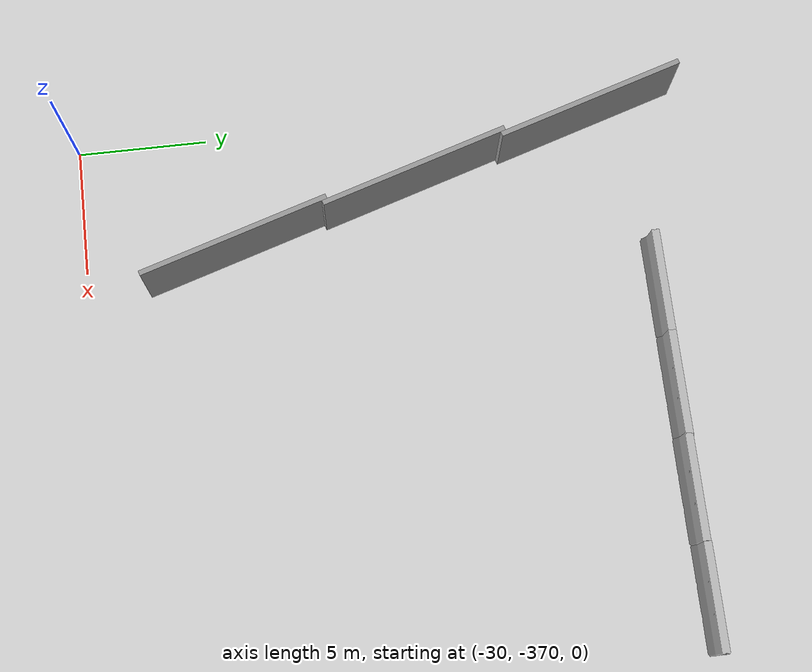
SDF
<sdf version="1.6">
 <world name="default">
  <model name="jersey_barrier_clone">
   <static>1</static>
   <link name="link">
    <visual name="visual">
     <geometry><mesh><uri>model://jersey_barrier/meshes/jersey_barrier.dae</uri></mesh></geometry>
    </visual>
    <collision name="upright">
     <pose>0 0 0.5715 0 -0 0</pose>
     <geometry><box><size>4.06542 0.3063 1.143</size></box></geometry>
    </collision>
    <collision name="base">
     <pose>0 0 0.032258 0 -0 0</pose>
     <geometry><box><size>4.06542 0.8107 0.064516</size></box></geometry>
    </collision>
    <collision name="base2">
     <pose>0 0 0.1 0 -0 0</pose>
     <geometry><box><size>4.06542 0.65 0.1</size></box></geometry>
    </collision>
    <collision name="base3">
     <pose>0 0 0.2 0 -0 0</pose>
     <geometry><box><size>4.06542 0.5 0.1</size></box></geometry>
    </collision>
    <collision name="left-angle">
     <pose>0 -0.224 0.2401 0.9 -0 0</pose>
     <geometry><box><size>4.06542 0.5 0.064516</size></box></geometry>
    </collision>
    <collision name="right-angle">
     <pose>0 0.224 0.2401 -0.9 0 0</pose>
     <geometry><box><size>4.06542 0.5 0.064516</size></box></geometry>
    </collision>
   </link>
   <pose>-22 -348 0 0 -0 0</pose>
  </model>
  <model name="jersey_barrier_clone_clone">
   <static>1</static>
   <link name="link">
    <visual name="visual">
     <geometry><mesh><uri>model://jersey_barrier/meshes/jersey_barrier.dae</uri></mesh></geometry>
    </visual>
    <collision name="upright">
     <pose>0 0 0.5715 0 -0 0</pose>
     <geometry><box><size>4.06542 0.3063 1.143</size></box></geometry>
    </collision>
    <collision name="base">
     <pose>0 0 0.032258 0 -0 0</pose>
     <geometry><box><size>4.06542 0.8107 0.064516</size></box></geometry>
    </collision>
    <collision name="base2">
     <pose>0 0 0.1 0 -0 0</pose>
     <geometry><box><size>4.06542 0.65 0.1</size></box></geometry>
    </collision>
    <collision name="base3">
     <pose>0 0 0.2 0 -0 0</pose>
     <geometry><box><size>4.06542 0.5 0.1</size></box></geometry>
    </collision>
    <collision name="left-angle">
     <pose>0 -0.224 0.2401 0.9 -0 0</pose>
     <geometry><box><size>4.06542 0.5 0.064516</size></box></geometry>
    </collision>
    <collision name="right-angle">
     <pose>0 0.224 0.2401 -0.9 0 0</pose>
     <geometry><box><size>4.06542 0.5 0.064516</size></box></geometry>
    </collision>
   </link>
   <pose>-18 -348 0 0 -0 0</pose>
  </model>
  <model name="jersey_barrier_clone_clone_clone">
   <static>1</static>
   <link name="link">
    <visual name="visual">
     <geometry><mesh><uri>model://jersey_barrier/meshes/jersey_barrier.dae</uri></mesh></geometry>
    </visual>
    <collision name="upright">
     <pose>0 0 0.5715 0 -0 0</pose>
     <geometry><box><size>4.06542 0.3063 1.143</size></box></geometry>
    </collision>
    <collision name="base">
     <pose>0 0 0.032258 0 -0 0</pose>
     <geometry><box><size>4.06542 0.8107 0.064516</size></box></geometry>
    </collision>
    <collision name="base2">
     <pose>0 0 0.1 0 -0 0</pose>
     <geometry><box><size>4.06542 0.65 0.1</size></box></geometry>
    </collision>
    <collision name="base3">
     <pose>0 0 0.2 0 -0 0</pose>
     <geometry><box><size>4.06542 0.5 0.1</size></box></geometry>
    </collision>
    <collision name="left-angle">
     <pose>0 -0.224 0.2401 0.9 -0 0</pose>
     <geometry><box><size>4.06542 0.5 0.064516</size></box></geometry>
    </collision>
    <collision name="right-angle">
     <pose>0 0.224 0.2401 -0.9 0 0</pose>
     <geometry><box><size>4.06542 0.5 0.064516</size></box></geometry>
    </collision>
   </link>
   <pose>-14.0215 -348.019 0 0 -0 0</pose>
  </model>
  <model name="jersey_barrier_clone_clone_clone_clone">
   <static>1</static>
   <link name="link">
    <visual name="visual">
     <geometry><mesh><uri>model://jersey_barrier/meshes/jersey_barrier.dae</uri></mesh></geometry>
    </visual>
    <collision name="upright">
     <pose>0 0 0.5715 0 -0 0</pose>
     <geometry><box><size>4.06542 0.3063 1.143</size></box></geometry>
    </collision>
    <collision name="base">
     <pose>0 0 0.032258 0 -0 0</pose>
     <geometry><box><size>4.06542 0.8107 0.064516</size></box></geometry>
    </collision>
    <collision name="base2">
     <pose>0 0 0.1 0 -0 0</pose>
     <geometry><box><size>4.06542 0.65 0.1</size></box></geometry>
    </collision>
    <collision name="base3">
     <pose>0 0 0.2 0 -0 0</pose>
     <geometry><box><size>4.06542 0.5 0.1</size></box></geometry>
    </collision>
    <collision name="left-angle">
     <pose>0 -0.224 0.2401 0.9 -0 0</pose>
     <geometry><box><size>4.06542 0.5 0.064516</size></box></geometry>
    </collision>
    <collision name="right-angle">
     <pose>0 0.224 0.2401 -0.9 0 0</pose>
     <geometry><box><size>4.06542 0.5 0.064516</size></box></geometry>
    </collision>
   </link>
   <pose>-10 -348 0 0 -0 0</pose>
  </model>
  <model name="grey_wall">
   <static>1</static>
   <link name="link">
    <pose>0 0 1.4 0 -0 0</pose>
    <collision name="collision"><geometry><box><size>7.5 0.2 2.8</size></box></geometry></collision>
    <visual name="visual">
     <cast_shadows>0</cast_shadows>
     <geometry><box><size>7.5 0.2 2.8</size></box></geometry>
     <material>
      <script>
       <uri>model://grey_wall/materials/scripts</uri>
       <uri>model://grey_wall/materials/textures</uri>
       <name>vrc/grey_wall</name>
      </script>
     </material>
    </visual>
   </link>
   <pose>-29 -350 0 0 -0 1.87601</pose>
  </model>
  <model name="grey_wall_clone">
   <static>1</static>
   <link name="link">
    <pose>0 0 1.4 0 -0 0</pose>
    <collision name="collision"><geometry><box><size>7.5 0.2 2.8</size></box></geometry></collision>
    <visual name="visual">
     <cast_shadows>0</cast_shadows>
     <geometry><box><size>7.5 0.2 2.8</size></box></geometry>
     <material>
      <script>
       <uri>model://grey_wall/materials/scripts</uri>
       <uri>model://grey_wall/materials/textures</uri>
       <name>vrc/grey_wall</name>
      </script>
     </material>
    </visual>
   </link>
   <pose>-27 -357 0 0 -0 1.87601</pose>
  </model>
  <model name="grey_wall_clone_0">
   <static>1</static>
   <link name="link">
    <pose>0 0 1.4 0 -0 0</pose>
    <collision name="collision"><geometry><box><size>7.5 0.2 2.8</size></box></geometry></collision>
    <visual name="visual">
     <cast_shadows>0</cast_shadows>
     <geometry><box><size>7.5 0.2 2.8</size></box></geometry>
     <material>
      <script>
       <uri>model://grey_wall/materials/scripts</uri>
       <uri>model://grey_wall/materials/textures</uri>
       <name>vrc/grey_wall</name>
      </script>
     </material>
    </visual>
   </link>
   <pose>-25 -364 0 0 -0 1.87601</pose>
  </model>
 </world>
</sdf>
